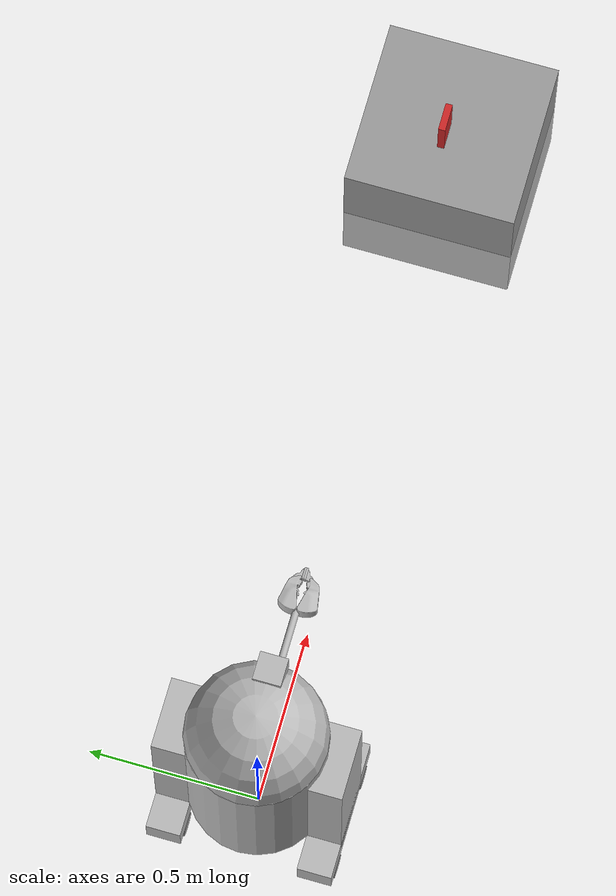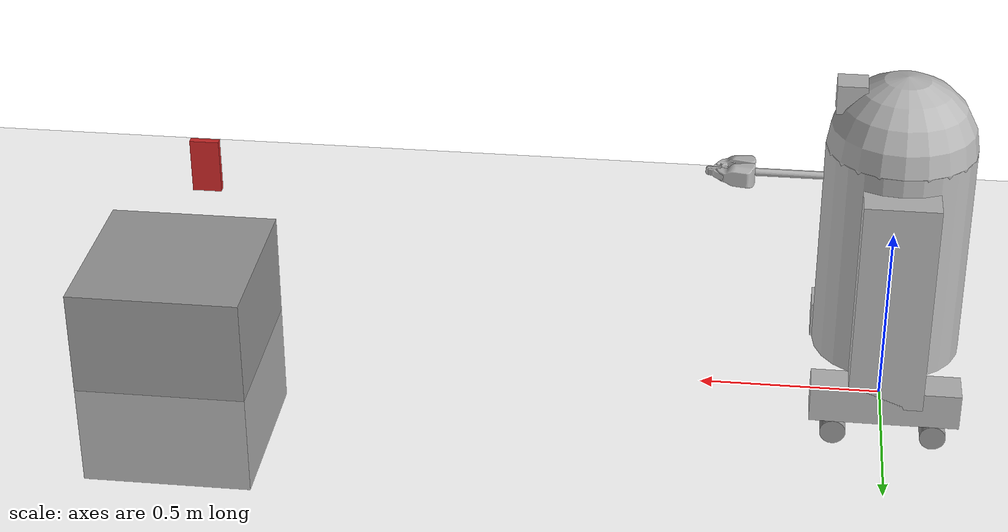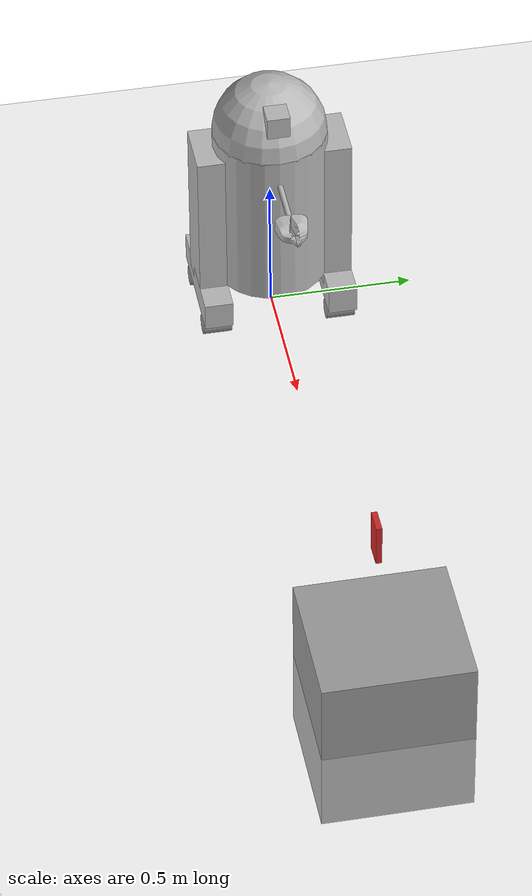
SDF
<sdf version="1.6">
 <world name="default">
  <model name="ground_plane">
   <static>1</static>
   <link name="link">
    <collision name="collision">
     <geometry><plane><normal>0 0 1</normal><size>100 100</size></plane></geometry>
     <surface><friction><ode><mu>100</mu><mu2>50</mu2></ode></friction></surface>
    </collision>
    <visual name="visual">
     <cast_shadows>0</cast_shadows>
     <geometry><plane><normal>0 0 1</normal><size>100 100</size></plane></geometry>
     <material>
      <script><uri>file://media/materials/scripts/gazebo.material</uri><name>Gazebo/Grey</name></script>
     </material>
    </visual>
   </link>
  </model>
  <light name="sun" type="directional">
   <pose>0 0 10 0 -0 0</pose>
   <diffuse>0.8 0.8 0.8 1</diffuse>
   <specular>0.2 0.2 0.2 1</specular>
   <attenuation>
    <range>1000</range>
    <constant>0.9</constant>
    <linear>0.01</linear>
    <quadratic>0.001</quadratic>
   </attenuation>
   <direction>-0.5 0.1 -0.9</direction>
  </light>
  <gravity>0 0 -9.8</gravity>
  <magnetic_field>6e-06 2.3e-05 -4.2e-05</magnetic_field>
  <atmosphere type="adiabatic"/>
  <physics name="default_physics" default="0" type="ode">
   <max_step_size>0.001</max_step_size>
   <real_time_factor>1</real_time_factor>
   <real_time_update_rate>1000</real_time_update_rate>
  </physics>
  <scene><ambient>0.4 0.4 0.4 1</ambient><background>0.7 0.7 0.7 1</background><shadows>1</shadows></scene>
  <audio><device>default</device></audio>
  <spherical_coordinates>
   <surface_model>EARTH_WGS84</surface_model>
   <latitude_deg>0</latitude_deg>
   <longitude_deg>0</longitude_deg>
   <elevation>0</elevation>
   <heading_deg>0</heading_deg>
  </spherical_coordinates>
  <model name="robot">
   <link name="base_link">
    <inertial>
     <pose>0 0 -0.04 0 -0 0</pose>
     <mass>50</mass>
     <inertia><ixx>10.556</ixx><ixy>0</ixy><ixz>0</ixz><iyy>8.62</iyy><iyz>0</iyz><izz>6.936</izz></inertia>
    </inertial>
    <collision name="base_link_collision">
     <geometry><cylinder><length>0.6</length><radius>0.2</radius></cylinder></geometry>
    </collision>
    <collision name="base_link_fixed_joint_lump__left_leg_collision_1">
     <pose>0 0.22 -0.05 3.14159 1.57079 3.14159</pose>
     <geometry><box><size>0.6 0.1 0.2</size></box></geometry>
    </collision>
    <collision name="base_link_fixed_joint_lump__left_base_collision_2">
     <pose>0 0.22 -0.35 0 -0 0</pose>
     <geometry><box><size>0.4 0.1 0.1</size></box></geometry>
    </collision>
    <collision name="base_link_fixed_joint_lump__right_leg_collision_3">
     <pose>0 -0.22 -0.05 3.14159 1.57079 3.14159</pose>
     <geometry><box><size>0.6 0.1 0.2</size></box></geometry>
    </collision>
    <collision name="base_link_fixed_joint_lump__right_base_collision_4">
     <pose>0 -0.22 -0.35 0 -0 0</pose>
     <geometry><box><size>0.4 0.1 0.1</size></box></geometry>
    </collision>
    <visual name="base_link_visual">
     <geometry><cylinder><length>0.6</length><radius>0.2</radius></cylinder></geometry>
    </visual>
    <visual name="base_link_fixed_joint_lump__left_leg_visual_1">
     <pose>0 0.22 -0.05 3.14159 1.57079 3.14159</pose>
     <geometry><box><size>0.6 0.1 0.2</size></box></geometry>
    </visual>
    <visual name="base_link_fixed_joint_lump__left_base_visual_2">
     <pose>0 0.22 -0.35 0 -0 0</pose>
     <geometry><box><size>0.4 0.1 0.1</size></box></geometry>
    </visual>
    <visual name="base_link_fixed_joint_lump__right_leg_visual_3">
     <pose>0 -0.22 -0.05 3.14159 1.57079 3.14159</pose>
     <geometry><box><size>0.6 0.1 0.2</size></box></geometry>
    </visual>
    <visual name="base_link_fixed_joint_lump__right_base_visual_4">
     <pose>0 -0.22 -0.35 0 -0 0</pose>
     <geometry><box><size>0.4 0.1 0.1</size></box></geometry>
    </visual>
   </link>
   <link name="left_back_wheel">
    <pose>-0.133333 0.22 -0.435 0 -0 0</pose>
    <inertial>
     <mass>1</mass>
     <inertia><ixx>1</ixx><ixy>0</ixy><ixz>0</ixz><iyy>1</iyy><iyz>0</iyz><izz>1</izz></inertia>
    </inertial>
    <collision name="left_back_wheel_collision">
     <pose>0 0 0 1.57075 -0 0</pose>
     <geometry><cylinder><length>0.1</length><radius>0.035</radius></cylinder></geometry>
     <surface>
      <contact><ode><kp>1e+07</kp><kd>1</kd></ode></contact>
      <friction><ode><mu>200</mu><mu2>100</mu2></ode></friction>
     </surface>
    </collision>
    <visual name="left_back_wheel_visual">
     <pose>0 0 0 1.57075 -0 0</pose>
     <geometry><cylinder><length>0.1</length><radius>0.035</radius></cylinder></geometry>
     <material>
      <script><name>Gazebo/Grey</name><uri>file://media/materials/scripts/gazebo.material</uri></script>
     </material>
    </visual>
   </link>
   <joint name="left_back_wheel_joint" type="revolute">
    <child>left_back_wheel</child>
    <parent>base_link</parent>
    <axis>
     <xyz>0 1 0</xyz>
     <limit><lower>-1e+16</lower><upper>1e+16</upper></limit>
     <dynamics><spring_reference>0</spring_reference><spring_stiffness>0</spring_stiffness></dynamics>
     <use_parent_model_frame>1</use_parent_model_frame>
    </axis>
   </joint>
   <link name="left_front_wheel">
    <pose>0.133333 0.22 -0.435 0 -0 0</pose>
    <inertial>
     <mass>1</mass>
     <inertia><ixx>1</ixx><ixy>0</ixy><ixz>0</ixz><iyy>1</iyy><iyz>0</iyz><izz>1</izz></inertia>
    </inertial>
    <collision name="left_front_wheel_collision">
     <pose>0 0 0 1.57075 -0 0</pose>
     <geometry><cylinder><length>0.1</length><radius>0.035</radius></cylinder></geometry>
     <surface>
      <contact><ode><kp>1e+07</kp><kd>1</kd></ode></contact>
      <friction><ode><mu>200</mu><mu2>100</mu2></ode></friction>
     </surface>
    </collision>
    <visual name="left_front_wheel_visual">
     <pose>0 0 0 1.57075 -0 0</pose>
     <geometry><cylinder><length>0.1</length><radius>0.035</radius></cylinder></geometry>
     <material>
      <script><name>Gazebo/Grey</name><uri>file://media/materials/scripts/gazebo.material</uri></script>
     </material>
    </visual>
   </link>
   <joint name="left_front_wheel_joint" type="revolute">
    <child>left_front_wheel</child>
    <parent>base_link</parent>
    <axis>
     <xyz>0 1 0</xyz>
     <limit><lower>-1e+16</lower><upper>1e+16</upper></limit>
     <dynamics><spring_reference>0</spring_reference><spring_stiffness>0</spring_stiffness></dynamics>
     <use_parent_model_frame>1</use_parent_model_frame>
    </axis>
   </joint>
   <link name="right_back_wheel">
    <pose>-0.133333 -0.22 -0.435 0 -0 0</pose>
    <inertial>
     <mass>1</mass>
     <inertia><ixx>1</ixx><ixy>0</ixy><ixz>0</ixz><iyy>1</iyy><iyz>0</iyz><izz>1</izz></inertia>
    </inertial>
    <collision name="right_back_wheel_collision">
     <pose>0 0 0 1.57075 -0 0</pose>
     <geometry><cylinder><length>0.1</length><radius>0.035</radius></cylinder></geometry>
     <surface>
      <contact><ode><kp>1e+07</kp><kd>1</kd></ode></contact>
      <friction><ode><mu>200</mu><mu2>100</mu2></ode></friction>
     </surface>
    </collision>
    <visual name="right_back_wheel_visual">
     <pose>0 0 0 1.57075 -0 0</pose>
     <geometry><cylinder><length>0.1</length><radius>0.035</radius></cylinder></geometry>
     <material>
      <script><name>Gazebo/Grey</name><uri>file://media/materials/scripts/gazebo.material</uri></script>
     </material>
    </visual>
   </link>
   <joint name="right_back_wheel_joint" type="revolute">
    <child>right_back_wheel</child>
    <parent>base_link</parent>
    <axis>
     <xyz>0 1 0</xyz>
     <limit><lower>-1e+16</lower><upper>1e+16</upper></limit>
     <dynamics><spring_reference>0</spring_reference><spring_stiffness>0</spring_stiffness></dynamics>
     <use_parent_model_frame>1</use_parent_model_frame>
    </axis>
   </joint>
   <link name="right_front_wheel">
    <pose>0.133333 -0.22 -0.435 0 -0 0</pose>
    <inertial>
     <mass>1</mass>
     <inertia><ixx>1</ixx><ixy>0</ixy><ixz>0</ixz><iyy>1</iyy><iyz>0</iyz><izz>1</izz></inertia>
    </inertial>
    <collision name="right_front_wheel_collision">
     <pose>0 0 0 1.57075 -0 0</pose>
     <geometry><cylinder><length>0.1</length><radius>0.035</radius></cylinder></geometry>
     <surface>
      <contact><ode><kp>1e+07</kp><kd>1</kd></ode></contact>
      <friction><ode><mu>200</mu><mu2>100</mu2></ode></friction>
     </surface>
    </collision>
    <visual name="right_front_wheel_visual">
     <pose>0 0 0 1.57075 -0 0</pose>
     <geometry><cylinder><length>0.1</length><radius>0.035</radius></cylinder></geometry>
     <material>
      <script><name>Gazebo/Grey</name><uri>file://media/materials/scripts/gazebo.material</uri></script>
     </material>
    </visual>
   </link>
   <joint name="right_front_wheel_joint" type="revolute">
    <child>right_front_wheel</child>
    <parent>base_link</parent>
    <axis>
     <xyz>0 1 0</xyz>
     <limit><lower>-1e+16</lower><upper>1e+16</upper></limit>
     <dynamics><spring_reference>0</spring_reference><spring_stiffness>0</spring_stiffness></dynamics>
     <use_parent_model_frame>1</use_parent_model_frame>
    </axis>
   </joint>
   <link name="gripper_pole">
    <pose>0.19 0 0.2 0 -0 0</pose>
    <inertial>
     <mass>0.05</mass>
     <inertia><ixx>1</ixx><ixy>0</ixy><ixz>0</ixz><iyy>1</iyy><iyz>0</iyz><izz>1</izz></inertia>
    </inertial>
    <collision name="gripper_pole_collision">
     <pose>0.1 0 0 3.14159 1.57079 3.14159</pose>
     <geometry><cylinder><length>0.2</length><radius>0.01</radius></cylinder></geometry>
    </collision>
    <visual name="gripper_pole_visual">
     <pose>0.1 0 0 3.14159 1.57079 3.14159</pose>
     <geometry><cylinder><length>0.2</length><radius>0.01</radius></cylinder></geometry>
    </visual>
   </link>
   <joint name="gripper_extension" type="prismatic">
    <child>gripper_pole</child>
    <parent>base_link</parent>
    <axis>
     <xyz>1 0 0</xyz>
     <limit><lower>-0.38</lower><upper>0</upper><effort>1000</effort><velocity>0.5</velocity></limit>
     <dynamics>
      <damping>0</damping>
      <friction>0</friction>
      <spring_reference>0</spring_reference>
      <spring_stiffness>0</spring_stiffness>
     </dynamics>
     <use_parent_model_frame>1</use_parent_model_frame>
    </axis>
   </joint>
   <link name="left_gripper">
    <pose>0.39 0.01 0.2 0 -0 0</pose>
    <inertial>
     <mass>0.1</mass>
     <inertia><ixx>2</ixx><ixy>0</ixy><ixz>0</ixz><iyy>2</iyy><iyz>0</iyz><izz>2</izz></inertia>
    </inertial>
    <collision name="left_gripper_collision">
     <geometry>
      <mesh><scale>1 1 1</scale><uri>/opt/ros/melodic/share/urdf_tutorial/meshes/l_finger.dae</uri></mesh>
     </geometry>
    </collision>
    <collision name="left_gripper_fixed_joint_lump__left_tip_collision_1">
     <pose>0.09137 0.00495 0 0 -0 0</pose>
     <geometry>
      <mesh><scale>1 1 1</scale><uri>/opt/ros/melodic/share/urdf_tutorial/meshes/l_finger_tip.dae</uri></mesh>
     </geometry>
    </collision>
    <visual name="left_gripper_visual">
     <geometry>
      <mesh><scale>1 1 1</scale><uri>/opt/ros/melodic/share/urdf_tutorial/meshes/l_finger.dae</uri></mesh>
     </geometry>
    </visual>
    <visual name="left_gripper_fixed_joint_lump__left_tip_visual_1">
     <pose>0.09137 0.00495 0 0 -0 0</pose>
     <geometry>
      <mesh><scale>1 1 1</scale><uri>/opt/ros/melodic/share/urdf_tutorial/meshes/l_finger_tip.dae</uri></mesh>
     </geometry>
    </visual>
   </link>
   <joint name="left_gripper_joint" type="revolute">
    <child>left_gripper</child>
    <parent>gripper_pole</parent>
    <axis>
     <xyz>0 0 1</xyz>
     <limit><lower>0</lower><upper>0.548</upper><effort>1000</effort><velocity>0.5</velocity></limit>
     <dynamics>
      <damping>0</damping>
      <friction>0</friction>
      <spring_reference>0</spring_reference>
      <spring_stiffness>0</spring_stiffness>
     </dynamics>
     <use_parent_model_frame>1</use_parent_model_frame>
    </axis>
   </joint>
   <link name="right_gripper">
    <pose>0.39 -0.01 0.2 0 -0 0</pose>
    <inertial>
     <mass>0.1</mass>
     <inertia><ixx>2</ixx><ixy>0</ixy><ixz>0</ixz><iyy>2</iyy><iyz>0</iyz><izz>2</izz></inertia>
    </inertial>
    <collision name="right_gripper_collision">
     <pose>0 0 0 -3.1415 0 0</pose>
     <geometry>
      <mesh><scale>1 1 1</scale><uri>/opt/ros/melodic/share/urdf_tutorial/meshes/l_finger.dae</uri></mesh>
     </geometry>
    </collision>
    <collision name="right_gripper_fixed_joint_lump__right_tip_collision_1">
     <pose>0.09137 0.00495 0 -3.1415 0 0</pose>
     <geometry>
      <mesh><scale>1 1 1</scale><uri>/opt/ros/melodic/share/urdf_tutorial/meshes/l_finger_tip.dae</uri></mesh>
     </geometry>
    </collision>
    <visual name="right_gripper_visual">
     <pose>0 0 0 -3.1415 0 0</pose>
     <geometry>
      <mesh><scale>1 1 1</scale><uri>/opt/ros/melodic/share/urdf_tutorial/meshes/l_finger.dae</uri></mesh>
     </geometry>
    </visual>
    <visual name="right_gripper_fixed_joint_lump__right_tip_visual_1">
     <pose>0.09137 0.00495 0 -3.1415 0 0</pose>
     <geometry>
      <mesh><scale>1 1 1</scale><uri>/opt/ros/melodic/share/urdf_tutorial/meshes/l_finger_tip.dae</uri></mesh>
     </geometry>
    </visual>
   </link>
   <joint name="right_gripper_joint" type="revolute">
    <child>right_gripper</child>
    <parent>gripper_pole</parent>
    <axis>
     <xyz>0 0 -1</xyz>
     <limit><lower>0</lower><upper>0.548</upper><effort>1000</effort><velocity>0.5</velocity></limit>
     <dynamics>
      <damping>0</damping>
      <friction>0</friction>
      <spring_reference>0</spring_reference>
      <spring_stiffness>0</spring_stiffness>
     </dynamics>
     <use_parent_model_frame>1</use_parent_model_frame>
    </axis>
   </joint>
   <link name="head">
    <pose>0 0 0.3 0 -0 0</pose>
    <inertial>
     <pose>0.060467 0 0.047133 0 -0 0</pose>
     <mass>3</mass>
     <inertia>
      <ixx>2.01333</ixx>
      <ixy>0</ixy>
      <ixz>-0.0171</ixz>
      <iyy>2.03527</iyy>
      <iyz>0</iyz>
      <izz>2.02194</izz>
     </inertia>
    </inertial>
    <collision name="head_collision"><geometry><sphere><radius>0.2</radius></sphere></geometry></collision>
    <collision name="head_fixed_joint_lump__box_collision_1">
     <pose>0.1814 0 0.1414 0 -0 0</pose>
     <geometry><box><size>0.08 0.08 0.08</size></box></geometry>
    </collision>
    <visual name="head_visual"><geometry><sphere><radius>0.2</radius></sphere></geometry></visual>
    <visual name="head_fixed_joint_lump__box_visual_1">
     <pose>0.1414 0 0.1414 0 -0 0</pose>
     <geometry><box><size>0.08 0.08 0.08</size></box></geometry>
    </visual>
   </link>
   <joint name="head_swivel" type="revolute">
    <child>head</child>
    <parent>base_link</parent>
    <axis>
     <xyz>0 0 1</xyz>
     <limit><lower>-1e+16</lower><upper>1e+16</upper></limit>
     <dynamics>
      <damping>0</damping>
      <friction>0</friction>
      <spring_reference>0</spring_reference>
      <spring_stiffness>0</spring_stiffness>
     </dynamics>
     <use_parent_model_frame>1</use_parent_model_frame>
    </axis>
   </joint>
   <static>0</static>
   <plugin name="r2d2_arm" filename="libr2d2_arm.so"><robotNamespace>/arm/</robotNamespace></plugin>
   <plugin name="r2d2_gripper" filename="libr2d2_gripper.so"><robotNamespace>/gripper/</robotNamespace></plugin>
   <plugin name="gazebo_ros_control" filename="libgazebo_ros_control.so">
    <robotNamespace>/</robotNamespace>
   </plugin>
   <pose>1e-06 -1e-06 0.469993 2e-06 2e-06 -4e-06</pose>
  </model>
  <model name="static_box">
   <link name="link">
    <inertial>
     <mass>297.42</mass>
     <inertia><ixx>15.4091</ixx><ixy>0</ixy><ixz>0</ixz><iyy>14.9349</iyy><iyz>0</iyz><izz>12.1903</izz></inertia>
    </inertial>
    <visual name="visual">
     <geometry><box><size>0.486163 0.505458 0.605165</size></box></geometry>
     <material>
      <script><name>Gazebo/Grey</name><uri>file://media/materials/scripts/gazebo.material</uri></script>
      <shader type="vertex"><normal_map>__default__</normal_map></shader>
     </material>
    </visual>
    <collision name="collision">
     <geometry><box><size>0.486163 0.505458 0.605165</size></box></geometry>
     <surface>
      <friction>
       <ode><mu>1</mu><mu2>1</mu2><fdir1>0 0 0</fdir1><slip1>0</slip1><slip2>0</slip2></ode>
       <torsional>
        <coefficient>1</coefficient>
        <patch_radius>0</patch_radius>
        <surface_radius>0</surface_radius>
        <use_patch_radius>1</use_patch_radius>
        <ode><slip>0</slip></ode>
       </torsional>
      </friction>
      <bounce><restitution_coefficient>0</restitution_coefficient><threshold>1e+06</threshold></bounce>
      <contact>
       <collide_without_contact>0</collide_without_contact>
       <collide_without_contact_bitmask>1</collide_without_contact_bitmask>
       <collide_bitmask>1</collide_bitmask>
       <ode>
        <soft_cfm>0</soft_cfm>
        <soft_erp>0.2</soft_erp>
        <kp>1e+13</kp>
        <kd>1</kd>
        <max_vel>0.01</max_vel>
        <min_depth>0</min_depth>
       </ode>
       <bullet>
        <split_impulse>1</split_impulse>
        <split_impulse_penetration_threshold>-0.01</split_impulse_penetration_threshold>
        <soft_cfm>0</soft_cfm>
        <soft_erp>0.2</soft_erp>
        <kp>1e+13</kp>
        <kd>1</kd>
       </bullet>
      </contact>
     </surface>
    </collision>
   </link>
   <static>1</static>
   <pose>2 0 0 0 -0 0</pose>
  </model>
  <model name="phone">
   <link name="link">
    <inertial>
     <mass>0.488795</mass>
     <inertia>
      <ixx>0.00047523</ixx>
      <ixy>0</ixy>
      <ixz>0</ixz>
      <iyy>0.00072676</iyy>
      <iyz>0</iyz>
      <izz>0.00028748</izz>
     </inertia>
    </inertial>
    <visual name="visual">
     <geometry><box><size>0.08 0.02 0.15</size></box></geometry>
     <material>
      <script><name>Gazebo/Red</name><uri>file://media/materials/scripts/gazebo.material</uri></script>
      <shader type="vertex"><normal_map>__default__</normal_map></shader>
      <ambient>0.3 0.3 0.3 1</ambient>
      <diffuse>0.7 0.7 0.7 1</diffuse>
      <specular>0.01 0.01 0.01 1</specular>
      <emissive>0 0 0 1</emissive>
     </material>
    </visual>
    <collision name="collision">
     <geometry><box><size>0.08 0.02 0.15</size></box></geometry>
     <surface>
      <friction>
       <ode><mu>1</mu><mu2>1</mu2><fdir1>0 0 0</fdir1><slip1>0</slip1><slip2>0</slip2></ode>
       <torsional>
        <coefficient>1</coefficient>
        <patch_radius>0</patch_radius>
        <surface_radius>0</surface_radius>
        <use_patch_radius>1</use_patch_radius>
        <ode><slip>0</slip></ode>
       </torsional>
      </friction>
      <bounce><restitution_coefficient>0</restitution_coefficient><threshold>1e+06</threshold></bounce>
      <contact>
       <collide_without_contact>0</collide_without_contact>
       <collide_without_contact_bitmask>1</collide_without_contact_bitmask>
       <collide_bitmask>1</collide_bitmask>
       <ode>
        <soft_cfm>0</soft_cfm>
        <soft_erp>0.2</soft_erp>
        <kp>1e+13</kp>
        <kd>1</kd>
        <max_vel>0.01</max_vel>
        <min_depth>0</min_depth>
       </ode>
       <bullet>
        <split_impulse>1</split_impulse>
        <split_impulse_penetration_threshold>-0.01</split_impulse_penetration_threshold>
        <soft_cfm>0</soft_cfm>
        <soft_erp>0.2</soft_erp>
        <kp>1e+13</kp>
        <kd>1</kd>
       </bullet>
      </contact>
     </surface>
    </collision>
   </link>
   <static>0</static>
   <pose>1.88373 -0.005149 0.598286 -0 3e-05 0.005541</pose>
  </model>
 </world>
</sdf>
